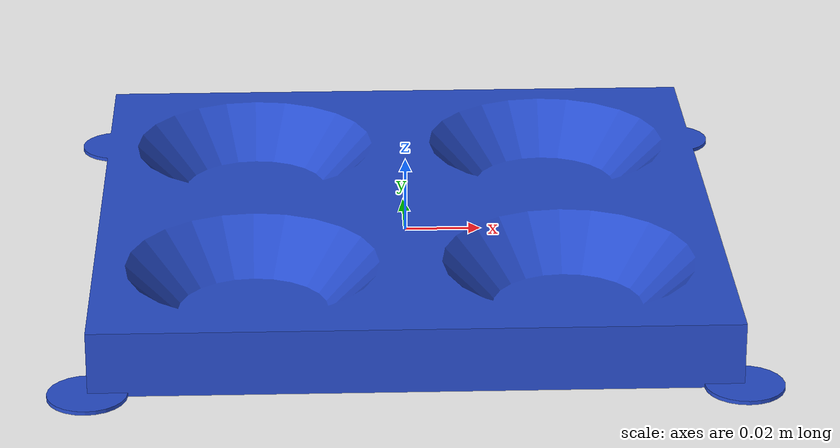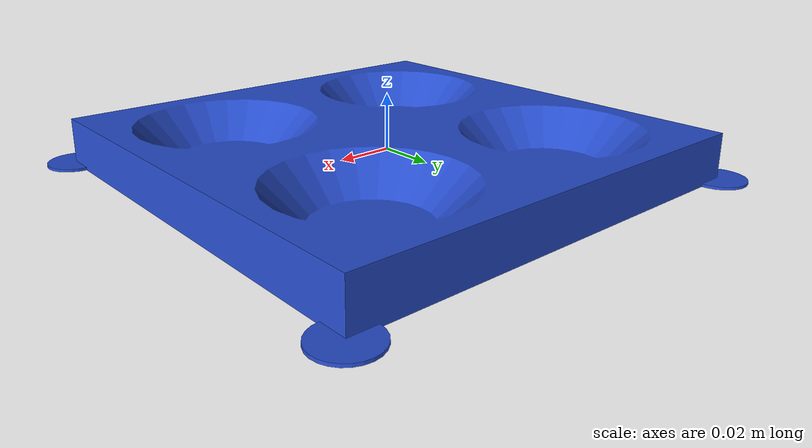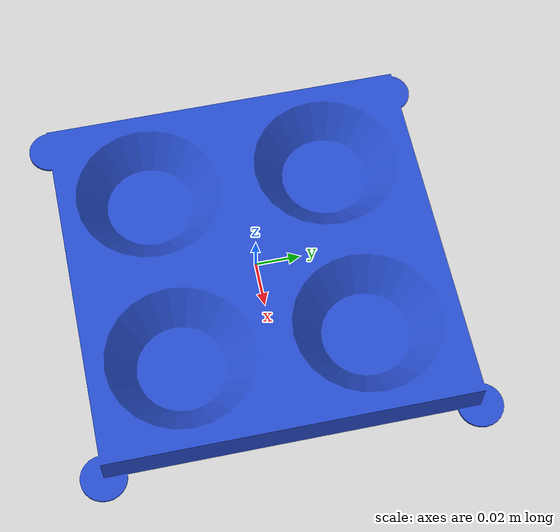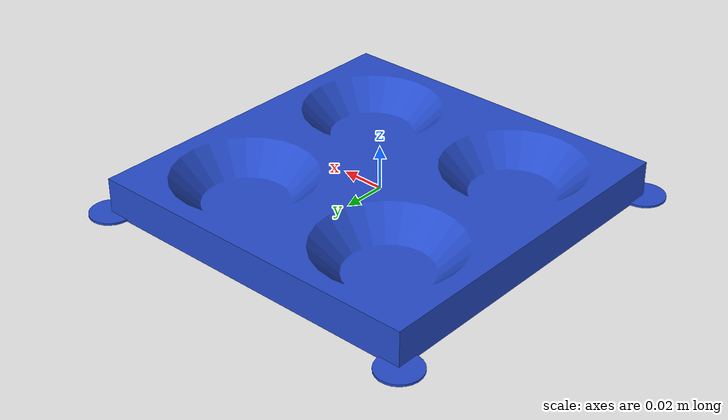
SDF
<?xml version="1.0" encoding="UTF-8"?>
<sdf version="1.0">
   <model name="sku_medium_gear_vessel">
      <static>true</static>
      <link name="link1">
         <collision name="collision1">
            <pose>0 0 0.0 0 0 0</pose>
            <geometry>
               <mesh>
                  <scale>0.0254 0.0254 0.0254</scale>
                  <uri>model://gear_support/meshes/medium_gear_holder_centered.stl</uri>
               </mesh>
            </geometry>
         </collision>
         <visual name="visual1">
            <pose>0 0 0 0 0 0</pose>
            <geometry>
               <mesh>
                  <scale>0.0254 0.0254 0.0254</scale>
                  <uri>model://gear_support/meshes/medium_gear_holder_centered.stl</uri>
               </mesh>
            </geometry>
            <material>
               <script>
                  <name>Gazebo/Blue</name>
                  <uri>__default__</uri>
               </script>
            </material>
         </visual>
         <inertial>
            <mass>0.39</mass>
            <inertia>
               <ixx>1.19794657e+02</ixx>
               <ixy>-8.44035782e-03</ixy>
               <ixz>-2.33453848e-04</ixz>
               <iyy>3.57882366e+01</iyy>
               <iyz>1.11958400e-03</iyz>
               <izz>1.54252131e+02</izz>
            </inertia>
         </inertial>
      </link>
   </model>
</sdf>
